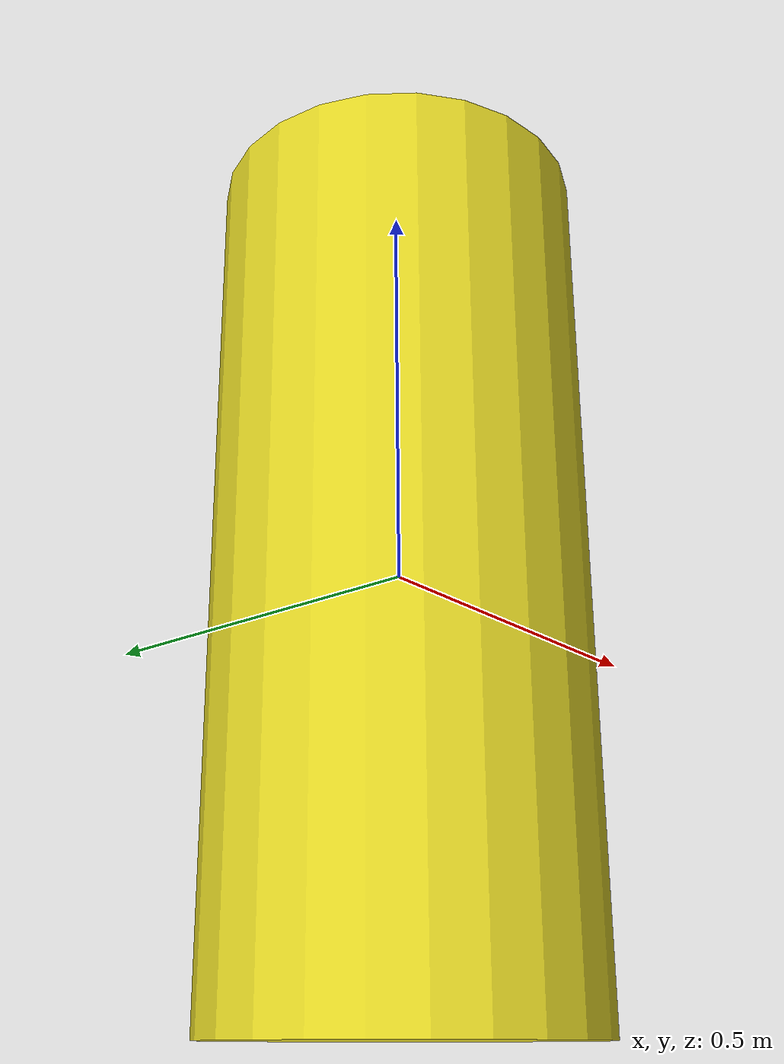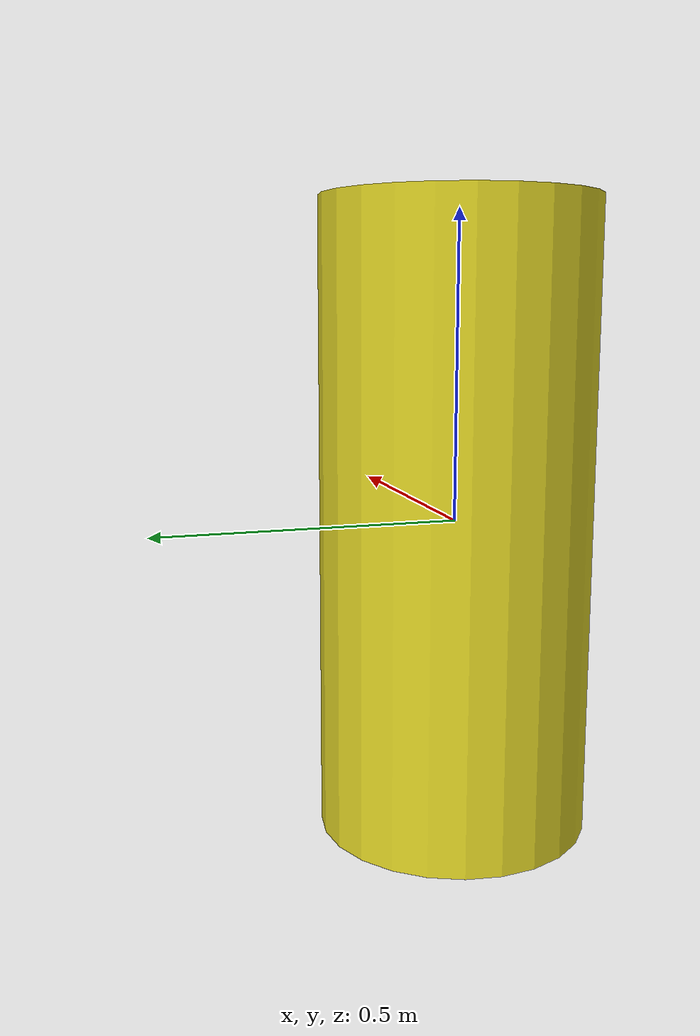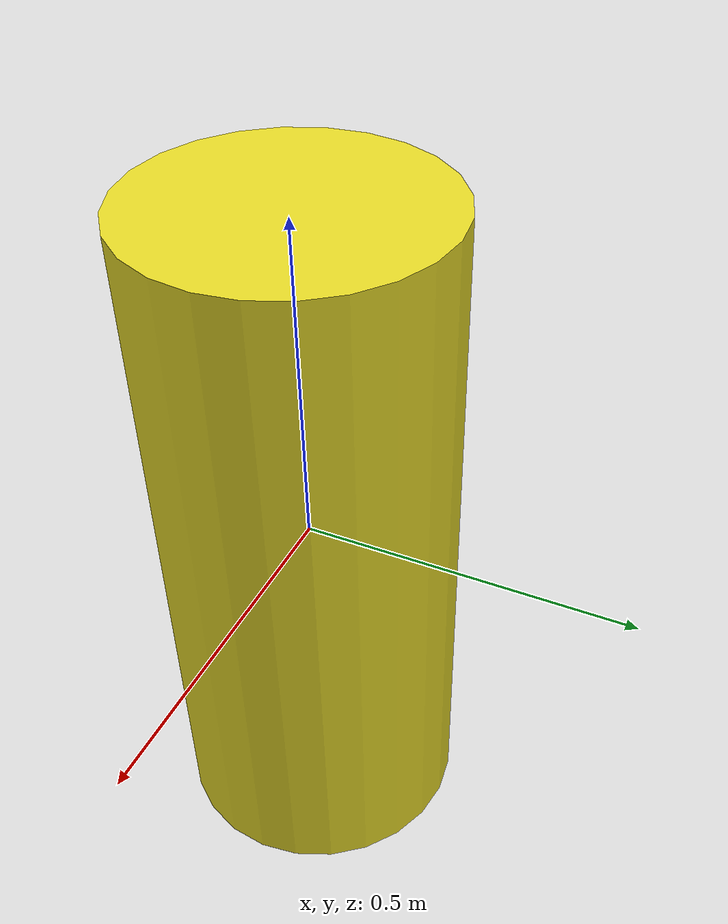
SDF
<?xml version="1.0"?>
<sdf version="1.7">
  <model name="barrel_yellow">
    <pose>0 0 0 0 0 0</pose>
     <link name='link'>
        <inertial>
          <mass>1</mass>
          <inertia>
            <ixx>0.14583299999999999</ixx>
            <ixy>0</ixy>
            <ixz>0</ixz>
            <iyy>0.14583299999999999</iyy>
            <iyz>0</iyz>
            <izz>0.125</izz>
          </inertia>
          <pose>0 0 0 0 0 0</pose>
        </inertial>
        <self_collide>false</self_collide>
        <enable_wind>false</enable_wind>
        <kinematic>false</kinematic>
        <pose>0 0 0 0 0 0</pose>
        <visual name='visual'>
          <geometry>
            <cylinder>
              <radius>0.222916</radius>
              <length>1.0356700000000001</length>
            </cylinder>
          </geometry>
          <material>
            <script>
              <name>Gazebo/Yellow</name>
              <uri>file://media/materials/scripts/gazebo.material</uri>
            </script>
            <shader type='pixel'/>
          </material>
          <pose>0 0 0 0 0 0</pose>
          <transparency>0</transparency>
          <cast_shadows>true</cast_shadows>
        </visual>
        <collision name='collision'>
          <laser_retro>0</laser_retro>
          <max_contacts>10</max_contacts>
          <pose>0 0 0 0 0 0</pose>
          <geometry>
            <cylinder>
              <radius>0.222916</radius>
              <length>1.0356700000000001</length>
            </cylinder>
          </geometry>
          <surface>
            <friction>
              <ode>
                <mu>1</mu>
                <mu2>1</mu2>
                <fdir1>0 0 0</fdir1>
                <slip1>0</slip1>
                <slip2>0</slip2>
              </ode>
              <torsional>
                <coefficient>1</coefficient>
                <patch_radius>0</patch_radius>
                <surface_radius>0</surface_radius>
                <use_patch_radius>true</use_patch_radius>
                <ode>
                  <slip>0</slip>
                </ode>
              </torsional>
            </friction>
            <bounce>
              <restitution_coefficient>0</restitution_coefficient>
              <threshold>1000000</threshold>
            </bounce>
            <contact>
              <collide_without_contact>false</collide_without_contact>
              <collide_without_contact_bitmask>1</collide_without_contact_bitmask>
              <collide_bitmask>1</collide_bitmask>
              <ode>
                <soft_cfm>0</soft_cfm>
                <soft_erp>0.20000000000000001</soft_erp>
                <kp>10000000000000</kp>
                <kd>1</kd>
                <max_vel>0.01</max_vel>
                <min_depth>0</min_depth>
              </ode>
              <bullet>
                <split_impulse>true</split_impulse>
                <split_impulse_penetration_threshold>-0.01</split_impulse_penetration_threshold>
                <soft_cfm>0</soft_cfm>
                <soft_erp>0.20000000000000001</soft_erp>
                <kp>10000000000000</kp>
                <kd>1</kd>
              </bullet>
            </contact>
          </surface>
        </collision>
      </link>
      <static>false</static>
      <allow_auto_disable>true</allow_auto_disable>
      <pose>-10.530400276184082 34.562625885009766 0.48958452317623902 -1.4886732127141289e-06 -6.1759990028397762e-07 2.569076395842905e-12</pose>
      <self_collide>false</self_collide>
  </model>
</sdf>
